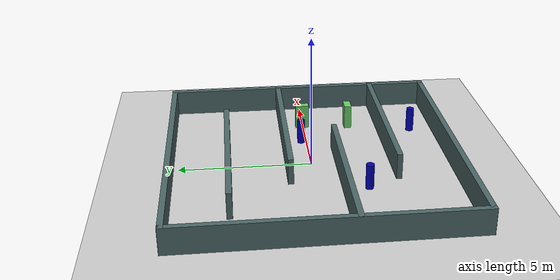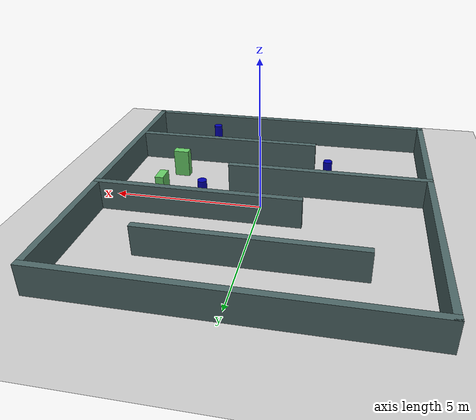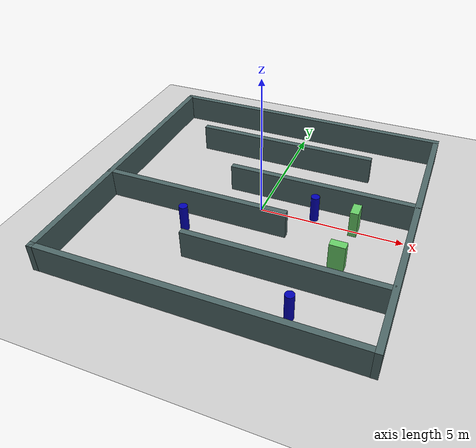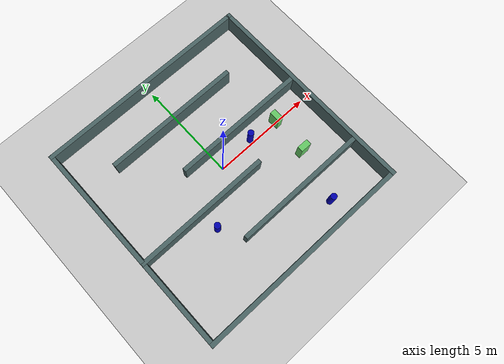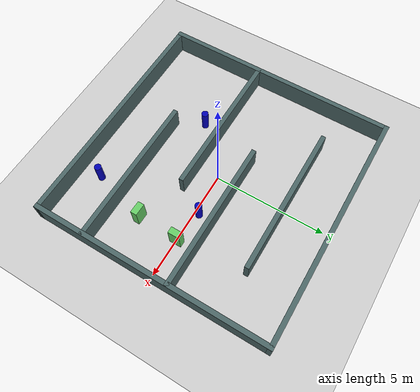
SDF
<sdf version="1.6">
 <world name="default">
  <light name="sun" type="directional">
   <pose>0 0 10 0 -0 0</pose>
   <diffuse>0.8 0.8 0.8 1</diffuse>
   <specular>0.2 0.2 0.2 1</specular>
   <attenuation>
    <range>1000</range>
    <constant>0.9</constant>
    <linear>0.01</linear>
    <quadratic>0.001</quadratic>
   </attenuation>
   <direction>-0.5 0.1 -0.9</direction>
  </light>
  <model name="ground_plane">
   <static>1</static>
   <link name="link">
    <collision name="collision">
     <geometry><plane><normal>0 0 1</normal><size>100 100</size></plane></geometry>
     <surface>
      <contact><collide_bitmask>65535</collide_bitmask></contact>
      <friction><ode><mu>100</mu><mu2>50</mu2></ode></friction>
     </surface>
    </collision>
    <visual name="visual">
     <cast_shadows>0</cast_shadows>
     <geometry><plane><normal>0 0 1</normal><size>100 100</size></plane></geometry>
     <material>
      <script><uri>file://media/materials/scripts/gazebo.material</uri><name>Gazebo/Grey</name></script>
     </material>
    </visual>
   </link>
  </model>
  <gravity>0 0 -9.8</gravity>
  <magnetic_field>6e-06 2.3e-05 -4.2e-05</magnetic_field>
  <atmosphere type="adiabatic"/>
  <physics name="default_physics" default="0" type="ode">
   <max_step_size>0.001</max_step_size>
   <real_time_factor>1</real_time_factor>
   <real_time_update_rate>1000</real_time_update_rate>
  </physics>
  <scene><ambient>0.4 0.4 0.4 1</ambient><background>0.7 0.7 0.7 1</background><shadows>1</shadows></scene>
  <audio><device>default</device></audio>
  <spherical_coordinates>
   <surface_model>EARTH_WGS84</surface_model>
   <latitude_deg>0</latitude_deg>
   <longitude_deg>0</longitude_deg>
   <elevation>0</elevation>
   <heading_deg>0</heading_deg>
  </spherical_coordinates>
  <model name="corridors">
   <link name="link_4">
    <inertial>
     <mass>1.40841</mass>
     <inertia><ixx>0.122444</ixx><ixy>0</ixy><ixz>0</ixz><iyy>5.50008</iyy><iyz>0</iyz><izz>5.38778</izz></inertia>
    </inertial>
    <pose>1.75184 -3.05859 0 0 -0 0</pose>
    <visual name="visual">
     <geometry><box><size>6.77215 0.207966 1</size></box></geometry>
     <material>
      <lighting>1</lighting>
      <script><uri>file://media/materials/scripts/gazebo.material</uri><name>Gazebo/Grey</name></script>
      <ambient>0.3 0.4 0.4 1</ambient>
      <diffuse>0.3 0.4 0.4 1</diffuse>
      <specular>0 0 0 0</specular>
      <emissive>0 0 0 1</emissive>
     </material>
    </visual>
    <collision name="collision">
     <geometry><box><size>6.77215 0.207966 1</size></box></geometry>
     <surface>
      <friction>
       <ode><mu>1</mu><mu2>1</mu2><fdir1>0 0 0</fdir1><slip1>0</slip1><slip2>0</slip2></ode>
       <torsional>
        <coefficient>1</coefficient>
        <patch_radius>0</patch_radius>
        <surface_radius>0</surface_radius>
        <use_patch_radius>1</use_patch_radius>
        <ode><slip>0</slip></ode>
       </torsional>
      </friction>
      <bounce><restitution_coefficient>0</restitution_coefficient><threshold>1e+06</threshold></bounce>
      <contact>
       <collide_without_contact>0</collide_without_contact>
       <collide_without_contact_bitmask>1</collide_without_contact_bitmask>
       <collide_bitmask>1</collide_bitmask>
       <ode>
        <soft_cfm>0</soft_cfm>
        <soft_erp>0.2</soft_erp>
        <kp>1e+13</kp>
        <kd>1</kd>
        <max_vel>0.01</max_vel>
        <min_depth>0</min_depth>
       </ode>
       <bullet>
        <split_impulse>1</split_impulse>
        <split_impulse_penetration_threshold>-0.01</split_impulse_penetration_threshold>
        <soft_cfm>0</soft_cfm>
        <soft_erp>0.2</soft_erp>
        <kp>1e+13</kp>
        <kd>1</kd>
       </bullet>
      </contact>
     </surface>
    </collision>
   </link>
   <link name="link_4_clone">
    <inertial>
     <mass>1.40841</mass>
     <inertia><ixx>0.122444</ixx><ixy>0</ixy><ixz>0</ixz><iyy>5.50008</iyy><iyz>0</iyz><izz>5.38778</izz></inertia>
    </inertial>
    <pose>-2.23536 -0.992616 0 0 -0 0</pose>
    <visual name="visual">
     <geometry><box><size>6.77215 0.207966 1</size></box></geometry>
     <material>
      <lighting>1</lighting>
      <script><uri>file://media/materials/scripts/gazebo.material</uri><name>Gazebo/Grey</name></script>
      <shader type="pixel"/>
      <ambient>0.3 0.4 0.4 1</ambient>
      <diffuse>0.3 0.4 0.4 1</diffuse>
      <specular>0 0 0 0</specular>
      <emissive>0 0 0 1</emissive>
     </material>
    </visual>
    <collision name="collision">
     <geometry><box><size>6.77215 0.207966 1</size></box></geometry>
     <surface>
      <friction>
       <ode><mu>1</mu><mu2>1</mu2><fdir1>0 0 0</fdir1><slip1>0</slip1><slip2>0</slip2></ode>
       <torsional>
        <coefficient>1</coefficient>
        <patch_radius>0</patch_radius>
        <surface_radius>0</surface_radius>
        <use_patch_radius>1</use_patch_radius>
        <ode><slip>0</slip></ode>
       </torsional>
      </friction>
      <bounce><restitution_coefficient>0</restitution_coefficient><threshold>1e+06</threshold></bounce>
      <contact>
       <collide_without_contact>0</collide_without_contact>
       <collide_without_contact_bitmask>1</collide_without_contact_bitmask>
       <collide_bitmask>1</collide_bitmask>
       <ode>
        <soft_cfm>0</soft_cfm>
        <soft_erp>0.2</soft_erp>
        <kp>1e+13</kp>
        <kd>1</kd>
        <max_vel>0.01</max_vel>
        <min_depth>0</min_depth>
       </ode>
       <bullet>
        <split_impulse>1</split_impulse>
        <split_impulse_penetration_threshold>-0.01</split_impulse_penetration_threshold>
        <soft_cfm>0</soft_cfm>
        <soft_erp>0.2</soft_erp>
        <kp>1e+13</kp>
        <kd>1</kd>
       </bullet>
      </contact>
     </surface>
    </collision>
   </link>
   <link name="link_4_clone_0">
    <inertial>
     <mass>2.24944</mass>
     <inertia><ixx>0.195561</ixx><ixy>0</ixy><ixz>0</ixz><iyy>22.1174</iyy><iyz>0</iyz><izz>21.938</izz></inertia>
    </inertial>
    <pose>-0.236386 5.30022 0 0 -0 0</pose>
    <visual name="visual">
     <geometry><box><size>10.8161 0.207966 1</size></box></geometry>
     <material>
      <lighting>1</lighting>
      <script><uri>file://media/materials/scripts/gazebo.material</uri><name>Gazebo/Grey</name></script>
      <shader type="pixel"/>
      <ambient>0.3 0.4 0.4 1</ambient>
      <diffuse>0.3 0.4 0.4 1</diffuse>
      <specular>0 0 0 0</specular>
      <emissive>0 0 0 1</emissive>
     </material>
    </visual>
    <collision name="collision">
     <geometry><box><size>10.8161 0.207966 1</size></box></geometry>
     <surface>
      <friction>
       <ode><mu>1</mu><mu2>1</mu2><fdir1>0 0 0</fdir1><slip1>0</slip1><slip2>0</slip2></ode>
       <torsional>
        <coefficient>1</coefficient>
        <patch_radius>0</patch_radius>
        <surface_radius>0</surface_radius>
        <use_patch_radius>1</use_patch_radius>
        <ode><slip>0</slip></ode>
       </torsional>
      </friction>
      <bounce><restitution_coefficient>0</restitution_coefficient><threshold>1e+06</threshold></bounce>
      <contact>
       <collide_without_contact>0</collide_without_contact>
       <collide_without_contact_bitmask>1</collide_without_contact_bitmask>
       <collide_bitmask>1</collide_bitmask>
       <ode>
        <soft_cfm>0</soft_cfm>
        <soft_erp>0.2</soft_erp>
        <kp>1e+13</kp>
        <kd>1</kd>
        <max_vel>0.01</max_vel>
        <min_depth>0</min_depth>
       </ode>
       <bullet>
        <split_impulse>1</split_impulse>
        <split_impulse_penetration_threshold>-0.01</split_impulse_penetration_threshold>
        <soft_cfm>0</soft_cfm>
        <soft_erp>0.2</soft_erp>
        <kp>1e+13</kp>
        <kd>1</kd>
       </bullet>
      </contact>
     </surface>
    </collision>
   </link>
   <link name="link_4_clone_0_clone">
    <inertial>
     <mass>2.24944</mass>
     <inertia><ixx>0.195561</ixx><ixy>0</ixy><ixz>0</ixz><iyy>22.1174</iyy><iyz>0</iyz><izz>21.938</izz></inertia>
    </inertial>
    <pose>-0.22101 -5.30605 0 0 -0 0</pose>
    <visual name="visual">
     <geometry><box><size>10.8161 0.207966 1</size></box></geometry>
     <material>
      <lighting>1</lighting>
      <script><uri>file://media/materials/scripts/gazebo.material</uri><name>Gazebo/Grey</name></script>
      <shader type="pixel"/>
      <ambient>0.3 0.4 0.4 1</ambient>
      <diffuse>0.3 0.4 0.4 1</diffuse>
      <specular>0 0 0 0</specular>
      <emissive>0 0 0 1</emissive>
     </material>
    </visual>
    <collision name="collision">
     <geometry><box><size>10.8161 0.207966 1</size></box></geometry>
     <surface>
      <friction>
       <ode><mu>1</mu><mu2>1</mu2><fdir1>0 0 0</fdir1><slip1>0</slip1><slip2>0</slip2></ode>
       <torsional>
        <coefficient>1</coefficient>
        <patch_radius>0</patch_radius>
        <surface_radius>0</surface_radius>
        <use_patch_radius>1</use_patch_radius>
        <ode><slip>0</slip></ode>
       </torsional>
      </friction>
      <bounce><restitution_coefficient>0</restitution_coefficient><threshold>1e+06</threshold></bounce>
      <contact>
       <collide_without_contact>0</collide_without_contact>
       <collide_without_contact_bitmask>1</collide_without_contact_bitmask>
       <collide_bitmask>1</collide_bitmask>
       <ode>
        <soft_cfm>0</soft_cfm>
        <soft_erp>0.2</soft_erp>
        <kp>1e+13</kp>
        <kd>1</kd>
        <max_vel>0.01</max_vel>
        <min_depth>0</min_depth>
       </ode>
       <bullet>
        <split_impulse>1</split_impulse>
        <split_impulse_penetration_threshold>-0.01</split_impulse_penetration_threshold>
        <soft_cfm>0</soft_cfm>
        <soft_erp>0.2</soft_erp>
        <kp>1e+13</kp>
        <kd>1</kd>
       </bullet>
      </contact>
     </surface>
    </collision>
   </link>
   <link name="link_4_clone_0_clone_0">
    <inertial>
     <mass>2.24944</mass>
     <inertia><ixx>0.195561</ixx><ixy>0</ixy><ixz>0</ixz><iyy>22.1174</iyy><iyz>0</iyz><izz>21.938</izz></inertia>
    </inertial>
    <pose>-5.53348 -0.00586 0 0 0 -1.56924</pose>
    <visual name="visual">
     <geometry><box><size>10.8161 0.207966 1</size></box></geometry>
     <material>
      <lighting>1</lighting>
      <script><uri>file://media/materials/scripts/gazebo.material</uri><name>Gazebo/Grey</name></script>
      <shader type="pixel"><normal_map>__default__</normal_map></shader>
      <ambient>0.3 0.4 0.4 1</ambient>
      <diffuse>0.3 0.4 0.4 1</diffuse>
      <specular>0 0 0 0</specular>
      <emissive>0 0 0 1</emissive>
     </material>
    </visual>
    <collision name="collision">
     <geometry><box><size>10.8161 0.207966 1</size></box></geometry>
     <surface>
      <friction>
       <ode><mu>1</mu><mu2>1</mu2><fdir1>0 0 0</fdir1><slip1>0</slip1><slip2>0</slip2></ode>
       <torsional>
        <coefficient>1</coefficient>
        <patch_radius>0</patch_radius>
        <surface_radius>0</surface_radius>
        <use_patch_radius>1</use_patch_radius>
        <ode><slip>0</slip></ode>
       </torsional>
      </friction>
      <bounce><restitution_coefficient>0</restitution_coefficient><threshold>1e+06</threshold></bounce>
      <contact>
       <collide_without_contact>0</collide_without_contact>
       <collide_without_contact_bitmask>1</collide_without_contact_bitmask>
       <collide_bitmask>1</collide_bitmask>
       <ode>
        <soft_cfm>0</soft_cfm>
        <soft_erp>0.2</soft_erp>
        <kp>1e+13</kp>
        <kd>1</kd>
        <max_vel>0.01</max_vel>
        <min_depth>0</min_depth>
       </ode>
       <bullet>
        <split_impulse>1</split_impulse>
        <split_impulse_penetration_threshold>-0.01</split_impulse_penetration_threshold>
        <soft_cfm>0</soft_cfm>
        <soft_erp>0.2</soft_erp>
        <kp>1e+13</kp>
        <kd>1</kd>
       </bullet>
      </contact>
     </surface>
    </collision>
   </link>
   <link name="link_4_clone_0_clone_0_clone">
    <inertial>
     <mass>2.24944</mass>
     <inertia><ixx>0.195561</ixx><ixy>0</ixy><ixz>0</ixz><iyy>22.1174</iyy><iyz>0</iyz><izz>21.938</izz></inertia>
    </inertial>
    <pose>5.07484 -0.005356 0 0 0 -1.56924</pose>
    <visual name="visual">
     <geometry><box><size>10.8161 0.207966 1</size></box></geometry>
     <material>
      <lighting>1</lighting>
      <script><uri>file://media/materials/scripts/gazebo.material</uri><name>Gazebo/Grey</name></script>
      <shader type="pixel"><normal_map>__default__</normal_map></shader>
      <ambient>0.3 0.4 0.4 1</ambient>
      <diffuse>0.3 0.4 0.4 1</diffuse>
      <specular>0 0 0 0</specular>
      <emissive>0 0 0 1</emissive>
     </material>
    </visual>
    <collision name="collision">
     <geometry><box><size>10.8161 0.207966 1</size></box></geometry>
     <surface>
      <friction>
       <ode><mu>1</mu><mu2>1</mu2><fdir1>0 0 0</fdir1><slip1>0</slip1><slip2>0</slip2></ode>
       <torsional>
        <coefficient>1</coefficient>
        <patch_radius>0</patch_radius>
        <surface_radius>0</surface_radius>
        <use_patch_radius>1</use_patch_radius>
        <ode><slip>0</slip></ode>
       </torsional>
      </friction>
      <bounce><restitution_coefficient>0</restitution_coefficient><threshold>1e+06</threshold></bounce>
      <contact>
       <collide_without_contact>0</collide_without_contact>
       <collide_without_contact_bitmask>1</collide_without_contact_bitmask>
       <collide_bitmask>1</collide_bitmask>
       <ode>
        <soft_cfm>0</soft_cfm>
        <soft_erp>0.2</soft_erp>
        <kp>1e+13</kp>
        <kd>1</kd>
        <max_vel>0.01</max_vel>
        <min_depth>0</min_depth>
       </ode>
       <bullet>
        <split_impulse>1</split_impulse>
        <split_impulse_penetration_threshold>-0.01</split_impulse_penetration_threshold>
        <soft_cfm>0</soft_cfm>
        <soft_erp>0.2</soft_erp>
        <kp>1e+13</kp>
        <kd>1</kd>
       </bullet>
      </contact>
     </surface>
    </collision>
   </link>
   <link name="link_4_clone_clone">
    <inertial>
     <mass>1.40841</mass>
     <inertia><ixx>0.122444</ixx><ixy>0</ixy><ixz>0</ixz><iyy>5.50008</iyy><iyz>0</iyz><izz>5.38778</izz></inertia>
    </inertial>
    <pose>1.7698 0.914164 0 0 -0 0</pose>
    <visual name="visual">
     <geometry><box><size>6.77215 0.207966 1</size></box></geometry>
     <material>
      <lighting>1</lighting>
      <script><uri>file://media/materials/scripts/gazebo.material</uri><name>Gazebo/Grey</name></script>
      <shader type="pixel"/>
      <ambient>0.3 0.4 0.4 1</ambient>
      <diffuse>0.3 0.4 0.4 1</diffuse>
      <specular>0 0 0 0</specular>
      <emissive>0 0 0 1</emissive>
     </material>
    </visual>
    <collision name="collision">
     <geometry><box><size>6.77215 0.207966 1</size></box></geometry>
     <surface>
      <friction>
       <ode><mu>1</mu><mu2>1</mu2><fdir1>0 0 0</fdir1><slip1>0</slip1><slip2>0</slip2></ode>
       <torsional>
        <coefficient>1</coefficient>
        <patch_radius>0</patch_radius>
        <surface_radius>0</surface_radius>
        <use_patch_radius>1</use_patch_radius>
        <ode><slip>0</slip></ode>
       </torsional>
      </friction>
      <bounce><restitution_coefficient>0</restitution_coefficient><threshold>1e+06</threshold></bounce>
      <contact>
       <collide_without_contact>0</collide_without_contact>
       <collide_without_contact_bitmask>1</collide_without_contact_bitmask>
       <collide_bitmask>1</collide_bitmask>
       <ode>
        <soft_cfm>0</soft_cfm>
        <soft_erp>0.2</soft_erp>
        <kp>1e+13</kp>
        <kd>1</kd>
        <max_vel>0.01</max_vel>
        <min_depth>0</min_depth>
       </ode>
       <bullet>
        <split_impulse>1</split_impulse>
        <split_impulse_penetration_threshold>-0.01</split_impulse_penetration_threshold>
        <soft_cfm>0</soft_cfm>
        <soft_erp>0.2</soft_erp>
        <kp>1e+13</kp>
        <kd>1</kd>
       </bullet>
      </contact>
     </surface>
    </collision>
   </link>
   <link name="link_4_clone_clone_0">
    <inertial>
     <mass>1.40841</mass>
     <inertia><ixx>0.122444</ixx><ixy>0</ixy><ixz>0</ixz><iyy>5.50008</iyy><iyz>0</iyz><izz>5.38778</izz></inertia>
    </inertial>
    <pose>-0.370247 3.15407 0 0 -0 0</pose>
    <visual name="visual">
     <geometry><box><size>6.77215 0.207966 1</size></box></geometry>
     <material>
      <lighting>1</lighting>
      <script><uri>file://media/materials/scripts/gazebo.material</uri><name>Gazebo/Grey</name></script>
      <shader type="pixel"/>
      <ambient>0.3 0.4 0.4 1</ambient>
      <diffuse>0.3 0.4 0.4 1</diffuse>
      <specular>0 0 0 0</specular>
      <emissive>0 0 0 1</emissive>
     </material>
    </visual>
    <collision name="collision">
     <geometry><box><size>6.77215 0.207966 1</size></box></geometry>
     <surface>
      <friction>
       <ode><mu>1</mu><mu2>1</mu2><fdir1>0 0 0</fdir1><slip1>0</slip1><slip2>0</slip2></ode>
       <torsional>
        <coefficient>1</coefficient>
        <patch_radius>0</patch_radius>
        <surface_radius>0</surface_radius>
        <use_patch_radius>1</use_patch_radius>
        <ode><slip>0</slip></ode>
       </torsional>
      </friction>
      <bounce><restitution_coefficient>0</restitution_coefficient><threshold>1e+06</threshold></bounce>
      <contact>
       <collide_without_contact>0</collide_without_contact>
       <collide_without_contact_bitmask>1</collide_without_contact_bitmask>
       <collide_bitmask>1</collide_bitmask>
       <ode>
        <soft_cfm>0</soft_cfm>
        <soft_erp>0.2</soft_erp>
        <kp>1e+13</kp>
        <kd>1</kd>
        <max_vel>0.01</max_vel>
        <min_depth>0</min_depth>
       </ode>
       <bullet>
        <split_impulse>1</split_impulse>
        <split_impulse_penetration_threshold>-0.01</split_impulse_penetration_threshold>
        <soft_cfm>0</soft_cfm>
        <soft_erp>0.2</soft_erp>
        <kp>1e+13</kp>
        <kd>1</kd>
       </bullet>
      </contact>
     </surface>
    </collision>
   </link>
   <static>0</static>
   <pose>0.13355 -0.01931 0.499994 0 3e-06 -7.4e-05</pose>
  </model>
  <model name="blue_cylinder">
   <link name="link_3">
    <inertial>
     <mass>0.0858992</mass>
     <inertia>
      <ixx>0.0070527</ixx>
      <ixy>0</ixy>
      <ixz>0</ixz>
      <iyy>0.0070527</iyy>
      <iyz>0</iyz>
      <izz>0.00096256</izz>
     </inertia>
    </inertial>
    <visual name="visual">
     <geometry><cylinder><radius>0.149704</radius><length>0.958133</length></cylinder></geometry>
     <material>
      <lighting>1</lighting>
      <script><uri>file://media/materials/scripts/gazebo.material</uri><name>Gazebo/Grey</name></script>
      <shader type="vertex"><normal_map>__default__</normal_map></shader>
      <ambient>0 0 0.3 1</ambient>
      <diffuse>0 0 0.7 1</diffuse>
      <specular>0.01 0.01 0.01 1</specular>
      <emissive>0 0 0 1</emissive>
     </material>
    </visual>
    <collision name="collision">
     <geometry><cylinder><radius>0.149704</radius><length>0.958133</length></cylinder></geometry>
     <surface>
      <friction>
       <ode><mu>1</mu><mu2>1</mu2><fdir1>0 0 0</fdir1><slip1>0</slip1><slip2>0</slip2></ode>
       <torsional>
        <coefficient>1</coefficient>
        <patch_radius>0</patch_radius>
        <surface_radius>0</surface_radius>
        <use_patch_radius>1</use_patch_radius>
        <ode><slip>0</slip></ode>
       </torsional>
      </friction>
      <bounce><restitution_coefficient>0</restitution_coefficient><threshold>1e+06</threshold></bounce>
      <contact>
       <collide_without_contact>0</collide_without_contact>
       <collide_without_contact_bitmask>1</collide_without_contact_bitmask>
       <collide_bitmask>1</collide_bitmask>
       <ode>
        <soft_cfm>0</soft_cfm>
        <soft_erp>0.2</soft_erp>
        <kp>1e+13</kp>
        <kd>1</kd>
        <max_vel>0.01</max_vel>
        <min_depth>0</min_depth>
       </ode>
       <bullet>
        <split_impulse>1</split_impulse>
        <split_impulse_penetration_threshold>-0.01</split_impulse_penetration_threshold>
        <soft_cfm>0</soft_cfm>
        <soft_erp>0.2</soft_erp>
        <kp>1e+13</kp>
        <kd>1</kd>
       </bullet>
      </contact>
     </surface>
    </collision>
   </link>
   <static>0</static>
   <pose>1.88808 0.208848 0.479065 0 -0 0</pose>
  </model>
  <model name="blue_cylinder_0">
   <link name="link_3">
    <inertial>
     <mass>0.0858992</mass>
     <inertia>
      <ixx>0.0070527</ixx>
      <ixy>0</ixy>
      <ixz>0</ixz>
      <iyy>0.0070527</iyy>
      <iyz>0</iyz>
      <izz>0.00096256</izz>
     </inertia>
    </inertial>
    <visual name="visual">
     <geometry><cylinder><radius>0.149704</radius><length>0.958133</length></cylinder></geometry>
     <material>
      <lighting>1</lighting>
      <script><uri>file://media/materials/scripts/gazebo.material</uri><name>Gazebo/Grey</name></script>
      <shader type="vertex"><normal_map>__default__</normal_map></shader>
      <ambient>0 0 0.3 1</ambient>
      <diffuse>0 0 0.7 1</diffuse>
      <specular>0.01 0.01 0.01 1</specular>
      <emissive>0 0 0 1</emissive>
     </material>
    </visual>
    <collision name="collision">
     <geometry><cylinder><radius>0.149704</radius><length>0.958133</length></cylinder></geometry>
     <surface>
      <friction>
       <ode><mu>1</mu><mu2>1</mu2><fdir1>0 0 0</fdir1><slip1>0</slip1><slip2>0</slip2></ode>
       <torsional>
        <coefficient>1</coefficient>
        <patch_radius>0</patch_radius>
        <surface_radius>0</surface_radius>
        <use_patch_radius>1</use_patch_radius>
        <ode><slip>0</slip></ode>
       </torsional>
      </friction>
      <bounce><restitution_coefficient>0</restitution_coefficient><threshold>1e+06</threshold></bounce>
      <contact>
       <collide_without_contact>0</collide_without_contact>
       <collide_without_contact_bitmask>1</collide_without_contact_bitmask>
       <collide_bitmask>1</collide_bitmask>
       <ode>
        <soft_cfm>0</soft_cfm>
        <soft_erp>0.2</soft_erp>
        <kp>1e+13</kp>
        <kd>1</kd>
        <max_vel>0.01</max_vel>
        <min_depth>0</min_depth>
       </ode>
       <bullet>
        <split_impulse>1</split_impulse>
        <split_impulse_penetration_threshold>-0.01</split_impulse_penetration_threshold>
        <soft_cfm>0</soft_cfm>
        <soft_erp>0.2</soft_erp>
        <kp>1e+13</kp>
        <kd>1</kd>
       </bullet>
      </contact>
     </surface>
    </collision>
   </link>
   <static>0</static>
   <pose>-2.03699 -1.88762 0.47906 0 -0 0</pose>
  </model>
  <model name="blue_cylinder_1">
   <link name="link_3">
    <inertial>
     <mass>0.0858992</mass>
     <inertia>
      <ixx>0.0070527</ixx>
      <ixy>0</ixy>
      <ixz>0</ixz>
      <iyy>0.0070527</iyy>
      <iyz>0</iyz>
      <izz>0.00096256</izz>
     </inertia>
    </inertial>
    <visual name="visual">
     <geometry><cylinder><radius>0.149704</radius><length>0.958133</length></cylinder></geometry>
     <material>
      <lighting>1</lighting>
      <script><uri>file://media/materials/scripts/gazebo.material</uri><name>Gazebo/Grey</name></script>
      <shader type="vertex"><normal_map>__default__</normal_map></shader>
      <ambient>0 0 0.3 1</ambient>
      <diffuse>0 0 0.7 1</diffuse>
      <specular>0.01 0.01 0.01 1</specular>
      <emissive>0 0 0 1</emissive>
     </material>
    </visual>
    <collision name="collision">
     <geometry><cylinder><radius>0.149704</radius><length>0.958133</length></cylinder></geometry>
     <surface>
      <friction>
       <ode><mu>1</mu><mu2>1</mu2><fdir1>0 0 0</fdir1><slip1>0</slip1><slip2>0</slip2></ode>
       <torsional>
        <coefficient>1</coefficient>
        <patch_radius>0</patch_radius>
        <surface_radius>0</surface_radius>
        <use_patch_radius>1</use_patch_radius>
        <ode><slip>0</slip></ode>
       </torsional>
      </friction>
      <bounce><restitution_coefficient>0</restitution_coefficient><threshold>1e+06</threshold></bounce>
      <contact>
       <collide_without_contact>0</collide_without_contact>
       <collide_without_contact_bitmask>1</collide_without_contact_bitmask>
       <collide_bitmask>1</collide_bitmask>
       <ode>
        <soft_cfm>0</soft_cfm>
        <soft_erp>0.2</soft_erp>
        <kp>1e+13</kp>
        <kd>1</kd>
        <max_vel>0.01</max_vel>
        <min_depth>0</min_depth>
       </ode>
       <bullet>
        <split_impulse>1</split_impulse>
        <split_impulse_penetration_threshold>-0.01</split_impulse_penetration_threshold>
        <soft_cfm>0</soft_cfm>
        <soft_erp>0.2</soft_erp>
        <kp>1e+13</kp>
        <kd>1</kd>
       </bullet>
      </contact>
     </surface>
    </collision>
   </link>
   <static>0</static>
   <pose>2.54095 -4.33295 0.479057 0 -0 0</pose>
  </model>
  <model name="green_block">
   <link name="link_0">
    <inertial>
     <mass>0.14681</mass>
     <inertia>
      <ixx>0.0149609</ixx>
      <ixy>0</ixy>
      <ixz>0</ixz>
      <iyy>0.0124257</iyy>
      <iyz>0</iyz>
      <izz>0.00449673</izz>
     </inertia>
    </inertial>
    <visual name="visual">
     <geometry><box><size>0.283135 0.536088 0.967209</size></box></geometry>
     <material>
      <lighting>1</lighting>
      <script><uri>file://media/materials/scripts/gazebo.material</uri><name>Gazebo/Grey</name></script>
      <shader type="vertex"><normal_map>__default__</normal_map></shader>
      <ambient>0.3 0.8 0.3 1</ambient>
      <diffuse>0.4 0.8 0.4 1</diffuse>
      <specular>0.01 0.01 0.01 1</specular>
      <emissive>0 0 0 1</emissive>
     </material>
    </visual>
    <collision name="collision">
     <geometry><box><size>0.283135 0.536088 0.967209</size></box></geometry>
     <surface>
      <friction>
       <ode><mu>1</mu><mu2>1</mu2><fdir1>0 0 0</fdir1><slip1>0</slip1><slip2>0</slip2></ode>
       <torsional>
        <coefficient>1</coefficient>
        <patch_radius>0</patch_radius>
        <surface_radius>0</surface_radius>
        <use_patch_radius>1</use_patch_radius>
        <ode><slip>0</slip></ode>
       </torsional>
      </friction>
      <bounce><restitution_coefficient>0</restitution_coefficient><threshold>1e+06</threshold></bounce>
      <contact>
       <collide_without_contact>0</collide_without_contact>
       <collide_without_contact_bitmask>1</collide_without_contact_bitmask>
       <collide_bitmask>1</collide_bitmask>
       <ode>
        <soft_cfm>0</soft_cfm>
        <soft_erp>0.2</soft_erp>
        <kp>1e+13</kp>
        <kd>1</kd>
        <max_vel>0.01</max_vel>
        <min_depth>0</min_depth>
       </ode>
       <bullet>
        <split_impulse>1</split_impulse>
        <split_impulse_penetration_threshold>-0.01</split_impulse_penetration_threshold>
        <soft_cfm>0</soft_cfm>
        <soft_erp>0.2</soft_erp>
        <kp>1e+13</kp>
        <kd>1</kd>
       </bullet>
      </contact>
     </surface>
    </collision>
   </link>
   <static>0</static>
   <pose>3.32935 0.042417 0.483602 -6e-06 4e-06 0.002226</pose>
  </model>
  <model name="green_block_clone">
   <link name="link_0">
    <inertial>
     <mass>0.14681</mass>
     <inertia>
      <ixx>0.0149609</ixx>
      <ixy>0</ixy>
      <ixz>0</ixz>
      <iyy>0.0124257</iyy>
      <iyz>0</iyz>
      <izz>0.00449673</izz>
     </inertia>
    </inertial>
    <visual name="visual">
     <geometry><box><size>0.283135 0.536088 0.967209</size></box></geometry>
     <material>
      <lighting>1</lighting>
      <script><uri>file://media/materials/scripts/gazebo.material</uri><name>Gazebo/Grey</name></script>
      <shader type="vertex"><normal_map>__default__</normal_map></shader>
      <ambient>0.3 0.8 0.3 1</ambient>
      <diffuse>0.4 0.8 0.4 1</diffuse>
      <specular>0.01 0.01 0.01 1</specular>
      <emissive>0 0 0 1</emissive>
     </material>
    </visual>
    <collision name="collision">
     <geometry><box><size>0.283135 0.536088 0.967209</size></box></geometry>
     <surface>
      <friction>
       <ode><mu>1</mu><mu2>1</mu2><fdir1>0 0 0</fdir1><slip1>0</slip1><slip2>0</slip2></ode>
       <torsional>
        <coefficient>1</coefficient>
        <patch_radius>0</patch_radius>
        <surface_radius>0</surface_radius>
        <use_patch_radius>1</use_patch_radius>
        <ode><slip>0</slip></ode>
       </torsional>
      </friction>
      <bounce><restitution_coefficient>0</restitution_coefficient><threshold>1e+06</threshold></bounce>
      <contact>
       <collide_without_contact>0</collide_without_contact>
       <collide_without_contact_bitmask>1</collide_without_contact_bitmask>
       <collide_bitmask>1</collide_bitmask>
       <ode>
        <soft_cfm>0</soft_cfm>
        <soft_erp>0.2</soft_erp>
        <kp>1e+13</kp>
        <kd>1</kd>
        <max_vel>0.01</max_vel>
        <min_depth>0</min_depth>
       </ode>
       <bullet>
        <split_impulse>1</split_impulse>
        <split_impulse_penetration_threshold>-0.01</split_impulse_penetration_threshold>
        <soft_cfm>0</soft_cfm>
        <soft_erp>0.2</soft_erp>
        <kp>1e+13</kp>
        <kd>1</kd>
       </bullet>
      </contact>
     </surface>
    </collision>
   </link>
   <static>0</static>
   <pose>3.23604 -1.83113 0.483602 -6e-06 4e-06 -1.58369</pose>
  </model>
 </world>
</sdf>
